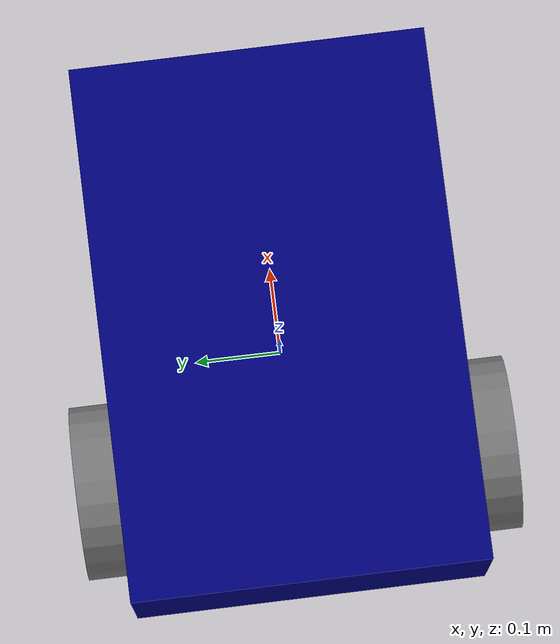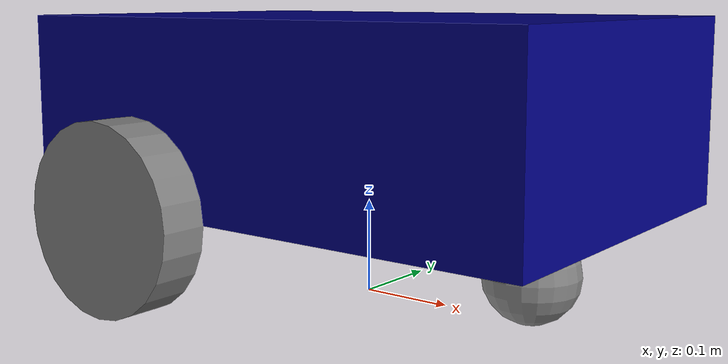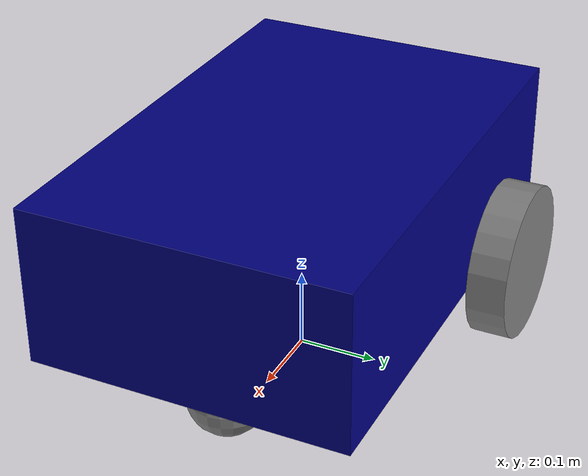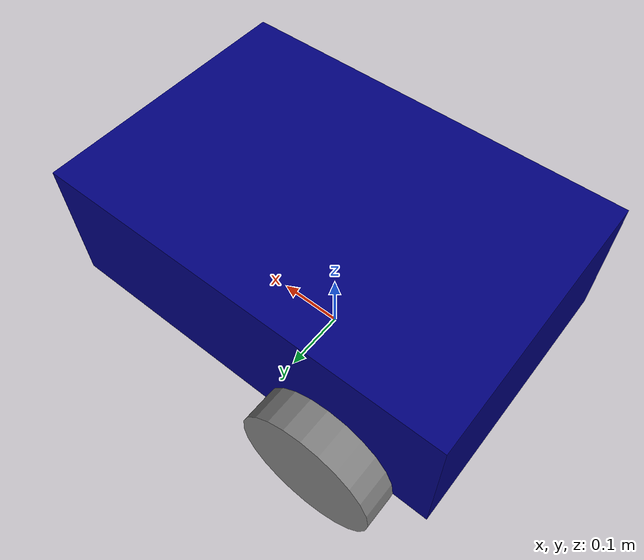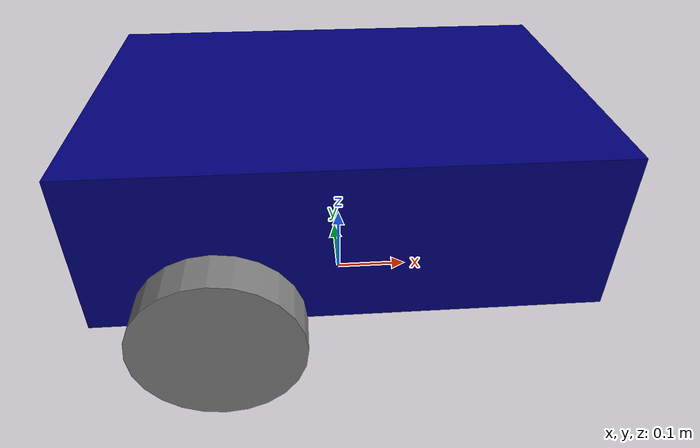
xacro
<?xml version="1.0"?>
<robot name="my_robot" xmlns:xacro="http://www.ros.org/wiki/xacro">

    <xacro:include filename="common_properties.xacro" />
    <xacro:include filename="mobile_base.xacro" />
    <xacro:include filename="mobile_base_gazebo.xacro" />
    <xacro:include filename="mid_360.xacro"/>

</robot>

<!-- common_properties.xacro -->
<robot xmlns:xacro="http://www.ros.org/wiki/xacro">

    <material name="blue">
        <color rgba="0 0 0.5 1" />
    </material>

    <material name="grey">
        <color rgba="0.5 0.5 0.5 1" />
    </material>

    <xacro:macro name="box_inertia" params="m l w h xyz rpy">
        <inertial>
            <origin xyz="${xyz}" rpy="${rpy}" />
            <mass value="${m}" />
            <inertia ixx="${(m/12) * (h*h + l*l)}" ixy="0" ixz="0"
                     iyy="${(m/12) * (w*w + l*l)}" iyz="0"
                     izz="${(m/12) * (w*w + h*h)}" />
        </inertial>
    </xacro:macro>

    <xacro:macro name="cylinder_inertia" params="m r h xyz rpy">
        <inertial>
            <origin xyz="${xyz}" rpy="${rpy}" />
            <mass value="${m}" />
            <inertia ixx="${(m/12) * (3*r*r + h*h)}" ixy="0" ixz="0"
                     iyy="${(m/12) * (3*r*r + h*h)}" iyz="0"
                     izz="${(m/2) * (r*r)}" />
        </inertial>
    </xacro:macro>

    <xacro:macro name="sphere_inertia" params="m r xyz rpy">
        <inertial>
            <origin xyz="${xyz}" rpy="${rpy}" />
            <mass value="${m}" />
            <inertia ixx="${(2/5)*m*r*r}" ixy="0" ixz="0"
                     iyy="${(2/5)*m*r*r}" iyz="0"
                     izz="${(2/5)*m*r*r}" />
        </inertial>
    </xacro:macro>

</robot>

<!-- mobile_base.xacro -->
<robot xmlns:xacro="http://www.ros.org/wiki/xacro">

    <xacro:property name="base_length" value="0.6" />
    <xacro:property name="base_width" value="0.4" />
    <xacro:property name="base_height" value="0.2" />
    <xacro:property name="wheel_radius" value="0.1" />
    <xacro:property name="wheel_length" value="0.05" />

    <link name="base_footprint" />

    <link name="base_link">
        <visual>
            <geometry>
                <box size="${base_length} ${base_width} ${base_height}" />
            </geometry>
            <origin xyz="0 0 ${base_height / 2.0}" rpy="0 0 0" />
            <material name="blue" />
        </visual>
        <collision>
            <geometry>
                <box size="${base_length} ${base_width} ${base_height}" />
            </geometry>
            <origin xyz="0 0 ${base_height / 2.0}" rpy="0 0 0" />
        </collision>
        <xacro:box_inertia m="5.0" l="${2*base_length}" w="${2*base_width}" h="${2*base_height}" xyz="0 0 ${base_height / 2.0}" rpy="0 0 0" />
    </link>

    <xacro:macro name="wheel_link" params="prefix">
        <link name="${prefix}_wheel_link">
            <visual>
                <geometry>
                    <cylinder radius="${wheel_radius}" length="${wheel_length}" />
                </geometry>
                <origin xyz="0 0 0" rpy="${pi/2.0} 0 0" />
                <material name="grey" />
            </visual>
            <collision>
                <geometry>
                    <cylinder radius="${wheel_radius}" length="${wheel_length}" />
                </geometry>
                <origin xyz="0 0 0" rpy="${pi/2.0} 0 0" />
            </collision>
            <xacro:cylinder_inertia m="1.0" r="${2*wheel_radius}" h="${2*wheel_length}" xyz="0 0 0" rpy="${pi/2.0} 0 0" />
        </link>
    </xacro:macro>

    <xacro:wheel_link prefix="right" />
    <xacro:wheel_link prefix="left" />

    <link name="caster_wheel_link">
        <visual>
            <geometry>
                <sphere radius="0.05" />
            </geometry>
            <origin xyz="0 0 0" rpy="0 0 0" />
            <material name="grey" />
        </visual>
        <collision>
            <geometry>
                <sphere radius="0.05" />
            </geometry>
            <origin xyz="0 0 0" rpy="0 0 0" />
        </collision>
        <xacro:sphere_inertia m="0.5" r="${2*wheel_radius / 2.0}" xyz="0 0 0" rpy="0 0 0" />
    </link>

    <joint name="base_right_wheel_joint" type="continuous">
        <parent link="base_link" />
        <child link="right_wheel_link" />
        <origin xyz="${-base_length / 4.0} ${-(base_width/2 + wheel_length/2)} 0" rpy="0 0 0" />
        <axis xyz="0 1 0" />
    </joint>

    <joint name="base_left_wheel_joint" type="continuous">
        <parent link="base_link" />
        <child link="left_wheel_link" />
        <origin xyz="${-base_length / 4.0} ${base_width/2 + wheel_length/2} 0" rpy="0 0 0" />
        <axis xyz="0 1 0" />
    </joint>

    <joint name="base_caster_wheel_joint" type="fixed">
        <parent link="base_link" />
        <child link="caster_wheel_link" />
        <origin xyz="${base_length / 3.0} 0 -0.05" rpy="0 0 0" />
    </joint>

    <joint name="base_joint" type="fixed">
        <parent link="base_footprint" />
        <child link="base_link" />
        <origin xyz="0 0 0.1" rpy="0 0 0" />
    </joint>

</robot>

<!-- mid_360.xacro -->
<robot xmlns:xacro="http://www.ros.org/wiki/xacro">

    <xacro:include filename="sensors/livox.xacro"/>
    <xacro:sensor_livox name="livox_frame" parent="base_link" min_angle="-2.35619" max_angle="2.35619" samples="720">
      <origin xyz="0.0 0.0 0.0" rpy="${pi} 0.0 0.0"/>
    </xacro:sensor_livox>

</robot>

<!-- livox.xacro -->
<robot xmlns:xacro="http://ros.org/wiki/xacro" xmlns:controller="http://playerstage.sourceforge.net/gazebo/xmlschema/#controller" xmlns:interface="http://playerstage.sourceforge.net/gazebo/xmlschema/#interface" name="sensor_livox">
  <xacro:macro name="sensor_livox" params="name parent *origin min_angle max_angle samples">

  <joint name="${name}_joint" type="fixed">
      <xacro:insert_block name="origin"/>
      <axis xyz="0 1 0"/>
      <parent link="${parent}"/>
      <child link="${name}"/>
  </joint>

  <link name="${name}">
    <visual>
      <origin xyz="0 0 0" rpy="0 0 0"/>
      <geometry>
        <mesh filename="file://$(find my_robot_description)/meshes/velodyne.dae" />
      </geometry>
    </visual>

    <collision>
      <origin xyz="0 0 0" rpy="0 0 0"/>
      <geometry>
        <box size="0.1 0.1 0.1"/>
      </geometry>
    </collision>

    <inertial>
      <mass value="0.0001"/>
      <origin xyz="0 0 0" rpy="0 0 0"/>
      <inertia ixx="0.0001" ixy="0" ixz="0" iyy="0.0001" iyz="0" izz="0.0001"/>
    </inertial>

  </link>
    <gazebo reference="${name}">
      <sensor type="ray" name="head_velodyne_sensor">
        <pose>0 0 0 0 0 0</pose>
        <visualize>false</visualize>
        <update_rate>10</update_rate>
        <ray>
          <scan>
            <horizontal>
              <resolution>1</resolution>
              <samples>1875</samples>
              <min_angle>-3.1415926535897931</min_angle>
              <max_angle>3.1415926535897931</max_angle>
            </horizontal>
            <vertical>
              <resolution>1</resolution>
              <samples>16</samples>
              <min_angle>-0.26179938779</min_angle>
              <max_angle>0.26179938779</max_angle>
            </vertical>
          </scan>
          <range>
            <min>0.9</min>
            <max>100</max>
            <resolution>0.001</resolution>
          </range>
          <noise>
            <type>gaussian</type>
            <mean>0.0</mean>
            <stddev>0.0</stddev>
          </noise>
        </ray>
        <plugin name="gazebo_ros_velodyne_controller" filename="libgazebo_ros_velodyne_laser.so">
          <ros>
            <remapping>~/out:=velodyne_points</remapping>
          </ros>
          <frame_name>${name}</frame_name>
          <min_range>0.9</min_range>
          <max_range>100</max_range>
          <gaussian_noise>0.01</gaussian_noise>
        </plugin>
      </sensor>
    </gazebo>
  </xacro:macro>
</robot>
